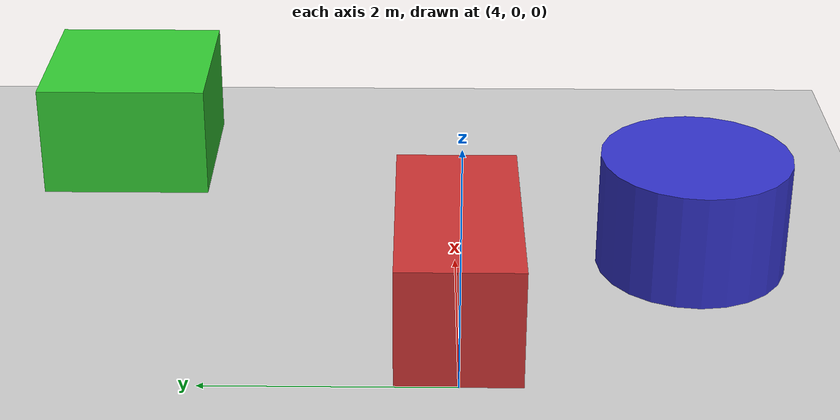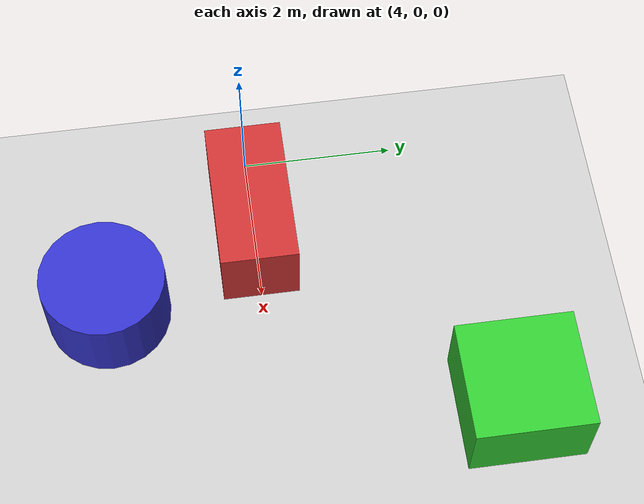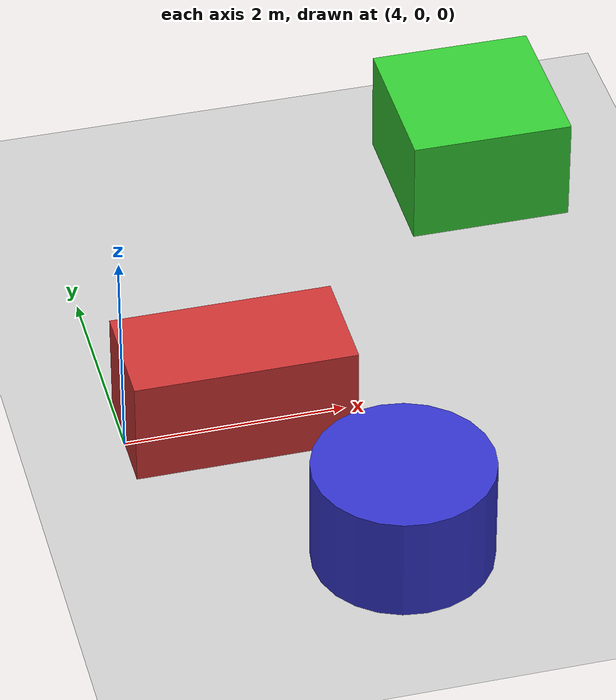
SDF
<?xml version="1.0" ?>
<sdf version="1.7">
  <world name="scene1">
    <!-- Sunlight -->
    <include>
      <uri>model://sun</uri>
    </include>

    <!-- Flat ground -->
    <include>
      <uri>model://ground_plane</uri>
    </include>

    <!-- Static Obstacles -->
    <!-- Large box obstacle 1 -->
    <model name="static_box_1">
      <static>true</static>
      <pose>5.0 0.0 0.5 0 0 0</pose>
      <link name="link">
        <collision name="collision">
          <geometry>
            <box>
              <size>2.0 1.0 1.0</size>
            </box>
          </geometry>
          <surface>
            <friction>
              <ode>
                <mu>0.5</mu>
                <mu2>0.5</mu2>
              </ode>
            </friction>
          </surface>
        </collision>
        <visual name="visual">
          <geometry>
            <box>
              <size>2.0 1.0 1.0</size>
            </box>
          </geometry>
          <material>
            <ambient>0.8 0.2 0.2 1</ambient>
            <diffuse>0.8 0.2 0.2 1</diffuse>
          </material>
        </visual>
      </link>
    </model>

    <!-- Large box obstacle 2 -->
    <model name="static_box_2">
      <static>true</static>
      <pose>8.0 3.0 0.5 0 0 0</pose>
      <link name="link">
        <collision name="collision">
          <geometry>
            <box>
              <size>1.5 1.5 1.0</size>
            </box>
          </geometry>
        </collision>
        <visual name="visual">
          <geometry>
            <box>
              <size>1.5 1.5 1.0</size>
            </box>
          </geometry>
          <material>
            <ambient>0.2 0.8 0.2 1</ambient>
            <diffuse>0.2 0.8 0.2 1</diffuse>
          </material>
        </visual>
      </link>
    </model>

    <!-- Cylinder obstacle -->
    <model name="static_cylinder_1">
      <static>true</static>
      <pose>6.0 -2.0 0.5 0 0 0</pose>
      <link name="link">
        <collision name="collision">
          <geometry>
            <cylinder>
              <radius>0.8</radius>
              <length>1.0</length>
            </cylinder>
          </geometry>
        </collision>
        <visual name="visual">
          <geometry>
            <cylinder>
              <radius>0.8</radius>
              <length>1.0</length>
            </cylinder>
          </geometry>
          <material>
            <ambient>0.2 0.2 0.8 1</ambient>
            <diffuse>0.2 0.2 0.8 1</diffuse>
          </material>
        </visual>
      </link>
    </model>

  </world>
</sdf>
